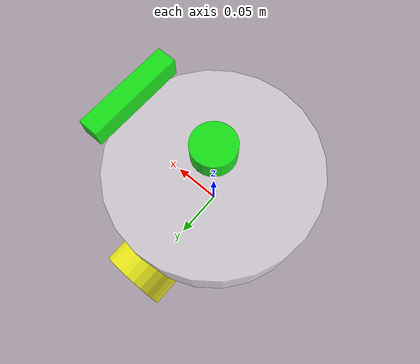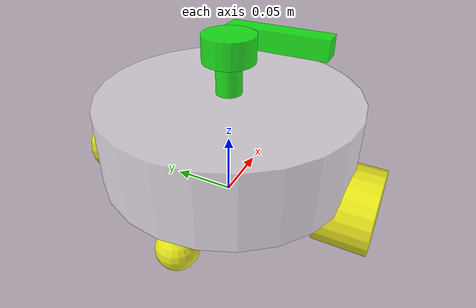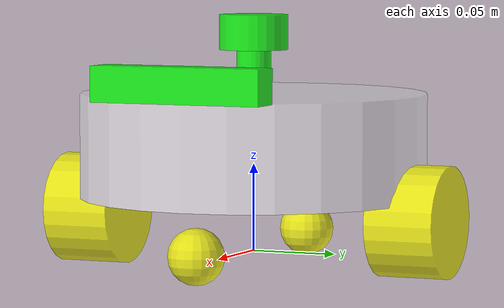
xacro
<?xml version="1.0"?>
<robot xmlns:xacro="http://www.ros.org/wiki/xacro" name="robot">
    <xacro:include filename="$(find gazebo_simulation)/urdf/robot_differential/base.urdf.xacro" />
    <!-- 传感器组件 -->
    <xacro:include filename="$(find gazebo_simulation)/urdf/robot_differential/sensor/imu.urdf.xacro" />
    <xacro:include filename="$(find gazebo_simulation)/urdf/robot_differential/sensor/laser.urdf.xacro" />
    <xacro:include filename="$(find gazebo_simulation)/urdf/robot_differential/sensor/camera.urdf.xacro" />
    <!-- 执行器组件 -->
    <xacro:include filename="$(find gazebo_simulation)/urdf/robot_differential/actuator/wheel.urdf.xacro" />
    <xacro:include filename="$(find gazebo_simulation)/urdf/robot_differential/actuator/caster.urdf.xacro" />
    <!-- Gazebo插件 -->
    <xacro:include filename="$(find gazebo_simulation)/urdf/robot_differential/plugins/gazebo_sensor_plugin.xacro" />
    <!-- ros2_control -->
    <xacro:include filename="$(find gazebo_simulation)/urdf/robot_differential/robot.ros2_control.xacro" />

    <xacro:base_xacro length="0.06" radius="0.10" />
    <!-- 传递参数调用 传感器 模块 -->
    <xacro:imu_xacro xyz="0 0 0.015" />
    <xacro:laser_xacro xyz="0 0 0.03" />
    <xacro:camera_xacro xyz="0.10 0 0.04" />

    <xacro:wheel_xacro wheel_name="left_wheel" xyz="0.0 0.10 -0.04" />
    <xacro:wheel_xacro wheel_name="right_wheel" xyz="0.0 -0.10 -0.04" />
    <xacro:caster_xacro caster_name="front_caster" xyz="0.08 0 -0.056" />
    <xacro:caster_xacro caster_name="back_caster" xyz="-0.08 0 -0.056" />

    <xacro:gazebo_sensor_plugin />
    <xacro:robot_ros2_control />

</robot>

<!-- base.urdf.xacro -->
<robot xmlns:xacro="http://www.ros.org/wiki/xacro" >
<xacro:include filename="$(find gazebo_simulation)/urdf/robot_differential/common_inertia.xacro" />
    <xacro:macro name="base_xacro" params="length radius">
        <link name="base_footprint" />
        <link name="base_link">
            <visual>
                <origin xyz="0 0 0" rpy="0 0 0" />
                <geometry>
                    <cylinder length="${length}" radius="${radius}" />
                </geometry>
                <material name="white">
                    <color rgba="1.0 1.0 1.0 0.5" />
                </material>
            </visual>
            <collision>
                <origin xyz="0 0 0" rpy="0 0 0" />
                <geometry>
                    <cylinder length="${length}" radius="${radius}" />
                </geometry>
                <material name="white">
                    <color rgba="1.0 1.0 1.0 0.5" />
                </material>
            </collision>
            <xacro:cylinder_inertia m="1.0" r="${radius}" h="${length}" />
        </link>
        <joint name="base_joint" type="fixed">
            <parent link="base_footprint" />
            <child link="base_link" />
            <origin xyz="0.0 0.0 ${length/2.0+0.032-0.001}" rpy="0 0 0"/>
        </joint>
    </xacro:macro>
</robot>

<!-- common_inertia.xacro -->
<robot xmlns:xacro="http://www.ros.org/wiki/xacro" >
    <xacro:macro name="box_inertia" params="m w h d">
        <inertial>
            <mass value="${m}" />
            <inertia ixx="${(m/12)*(h*h+d*d)}" ixy="0.0" ixz="0.0" iyy="${(m/12)*(w*w+d*d)}" iyz="0.0" izz="${(m/12)*(w*w+h*h)}" />
        </inertial>
    </xacro:macro>

    <xacro:macro name="cylinder_inertia" params="m r h">
        <inertial>
            <mass value="${m}" />
            <inertia ixx="${(m/12)*(3*r*r + h*h)}" ixy="0.0" ixz="0.0" iyy="${(m/12)*(3*r*r + h*h)}" iyz="0.0" izz="${(m/12)*(r*r)}" />
        </inertial>
    </xacro:macro>

    <xacro:macro name="sphere_inertia" params="m r">
        <inertial>
            <mass value="${m}" />
            <inertia ixx="${(m*2/5)*(r*r)}" ixy="0.0" ixz="0.0" iyy="${(m*2/5)*(r*r)}" iyz="0.0" izz="${(m*2/5)*(r*r)}" />
        </inertial>
    </xacro:macro>
</robot>

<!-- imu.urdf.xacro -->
<robot xmlns:xacro="http://www.ros.org/wiki/xacro" >
<xacro:include filename="$(find gazebo_simulation)/urdf/robot_differential/common_inertia.xacro" />
    <xacro:macro name="imu_xacro" params="xyz">
        <link name="imu_link">
            <visual>
                <origin xyz="0 0 0" rpy="0 0 0" />
                <geometry>
                    <box size="0.02 0.02 0.02" />
                </geometry>
                <material name="black">
                    <color rgba="0.0 0.0 0.0 0.5" />
                </material>
            </visual>
            <collision>
                <origin xyz="0 0 0" rpy="0 0 0" />
                <geometry>
                    <box size="0.02 0.02 0.02" />
                </geometry>
                <material name="black">
                    <color rgba="0.0 0.0 0.0 0.5" />
                </material>
            </collision>
            <xacro:box_inertia m="0.02" w="0.02" h="0.02" d="0.02" />
        </link>
        <joint name="imu_joint" type="fixed">
            <parent link="base_link" />
            <child link="imu_link" />
            <origin xyz="${xyz}" />
        </joint>

        <gazebo reference="imu_link">
            <material>Gazebo/Black</material>
        </gazebo>

    </xacro:macro>
</robot>

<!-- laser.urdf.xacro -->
<robot xmlns:xacro="http://www.ros.org/wiki/xacro" >
<xacro:include filename="$(find gazebo_simulation)/urdf/robot_differential/common_inertia.xacro" />
    <xacro:macro name="laser_xacro" params="xyz">
        <link name="laser_cylinder_link">
            <visual>
                <origin xyz="0 0 0" rpy="0 0 0" />
                <geometry>
                    <cylinder length="0.05" radius="0.01" />
                </geometry>
                <material name="green">
                    <color rgba="0.0 1.0 0.0 0.8" />
                </material>
            </visual>
            <collision>
                <origin xyz="0 0 0" rpy="0 0 0" />
                <geometry>
                    <cylinder length="0.05" radius="0.01" />
                </geometry>
                <material name="green">
                    <color rgba="0.0 1.0 0.0 0.8" />
                </material>
            </collision>
            <xacro:cylinder_inertia m="0.03" r="0.01" h="0.1" />
        </link>
        <joint name="laser_cylinder_joint" type="fixed">
            <parent link="base_link" />
            <child link="laser_cylinder_link" />
            <origin xyz="${xyz}" />
        </joint>
        <link name="laser_link">
            <visual>
                <origin xyz="0 0 0" rpy="0 0 0" />
                <geometry>
                    <cylinder length="0.02" radius="0.02" />
                </geometry>
                <material name="green">
                    <color rgba="0.0 1.0 0.0 0.8" />
                </material>
            </visual>
            <collision>
                <origin xyz="0 0 0" rpy="0 0 0" />
                <geometry>
                    <cylinder length="0.02" radius="0.02" />
                </geometry>
                <material name="green">
                    <color rgba="0.0 1.0 0.0 0.8" />
                </material>
            </collision>
            <xacro:cylinder_inertia m="0.07" r="0.02" h="0.02" />
        </link>
        <joint name="laser_joint" type="fixed">
            <parent link="laser_cylinder_link" />
            <child link="laser_link" />
            <origin xyz="0 0 0.035" />
        </joint>

        <gazebo reference="laser_cylinder_link">
            <material>Gazebo/Black</material>
        </gazebo>
        <gazebo reference="laser_link">
            <material>Gazebo/Black</material>
        </gazebo>

    </xacro:macro>
</robot>

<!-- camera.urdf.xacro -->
<robot xmlns:xacro="http://www.ros.org/wiki/xacro" >
<xacro:include filename="$(find gazebo_simulation)/urdf/robot_differential/common_inertia.xacro" />
    <xacro:macro name="camera_xacro" params="xyz">
        <link name="camera_link">
            <visual>
                <origin xyz="0 0 0" rpy="0 0 0" />
                <geometry>
                    <box size="0.02 0.10 0.02" />
                </geometry>
                <material name="green">
                    <color rgba="0.0 1.0 0.0 0.8" />
                </material>
            </visual>
            <collision>
                <origin xyz="0 0 0" rpy="0 0 0" />
                <geometry>
                    <box size="0.02 0.10 0.02" />
                </geometry>
                <material name="green">
                    <color rgba="0.0 1.0 0.0 0.8" />
                </material>
            </collision>
            <xacro:box_inertia m="0.07" w="0.02" h="0.10" d="0.02" />
        </link>
        <joint name="camera_joint" type="fixed">
            <parent link="base_link" />
            <child link="camera_link" />
            <origin xyz="${xyz}" />
        </joint>
        <link name="camera_optical_link"> </link>
        <joint name="camera_optical_joint" type="fixed">
            <parent link="camera_link" />
            <child link="camera_optical_link" />
            <origin xyz="0 0 0" rpy="${-pi/2} 0 ${-pi/2}" />
        </joint>
    </xacro:macro>
</robot>

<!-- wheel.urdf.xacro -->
<robot xmlns:xacro="http://www.ros.org/wiki/xacro" >
<xacro:include filename="$(find gazebo_simulation)/urdf/robot_differential/common_inertia.xacro" />
    <xacro:macro name="wheel_xacro" params="wheel_name xyz">
        <link name="${wheel_name}_link">
            <visual>
                <origin xyz="0 0 0" rpy="1.57079 0 0" />
                <geometry>
                    <cylinder length="0.04" radius="0.032" />
                </geometry>
                <material name="yellow">
                    <color rgba="1.0 1.0 0.0 0.8" />
                </material>
            </visual>
            <collision>
                <origin xyz="0 0 0" rpy="1.57079 0 0" />
                <geometry>
                    <cylinder length="0.04" radius="0.032" />
                </geometry>
                <material name="yellow">
                    <color rgba="1.0 1.0 0.0 0.8" />
                </material>
            </collision>
            <xacro:cylinder_inertia m="0.05" r="0.032" h="0.04" />
        </link>
        <joint name="${wheel_name}_joint" type="continuous">
            <parent link="base_link" />
            <child link="${wheel_name}_link" />
            <origin xyz="${xyz}" />
            <axis xyz="0 1 0" />
        </joint>

        <gazebo reference="${wheel_name}_link">
            <mu1 value="20.0" />
            <mu2 value="20.0" />
            <kp value="1000000000.0" />
            <kd value="1.0" />
        </gazebo>

    </xacro:macro>
</robot>

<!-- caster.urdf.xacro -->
<robot xmlns:xacro="http://www.ros.org/wiki/xacro" >
<xacro:include filename="$(find gazebo_simulation)/urdf/robot_differential/common_inertia.xacro" />
    <xacro:macro name="caster_xacro" params="caster_name xyz">
        <link name="${caster_name}_link">
            <visual>
                <origin xyz="0 0 0" rpy="0 0 0" />
                <geometry>
                    <sphere radius="0.016" />
                </geometry>
                <material name="yellow">
                    <color rgba="1.0 1.0 0.0 0.8" />
                </material>
            </visual>
            <collision>
                <origin xyz="0 0 0" rpy="0 0 0" />
                <geometry>
                    <sphere radius="0.016" />
                </geometry>
                <material name="yellow">
                    <color rgba="1.0 1.0 0.0 0.8" />
                </material>
            </collision>
            <xacro:sphere_inertia m="0.05" r="0.016" />
        </link>
        <joint name="${caster_name}_joint" type="fixed">
            <parent link="base_link" />
            <child link="${caster_name}_link" />
            <origin xyz="${xyz}" />
            <axis xyz="0 0 0" />
        </joint>

        <gazebo reference="${caster_name}_link">
            <mu1 value="0.0" />
            <mu2 value="0.0" />
            <kp value="10000000000.0" />
            <kd value="1.0" />
        </gazebo>

    </xacro:macro>
</robot>
